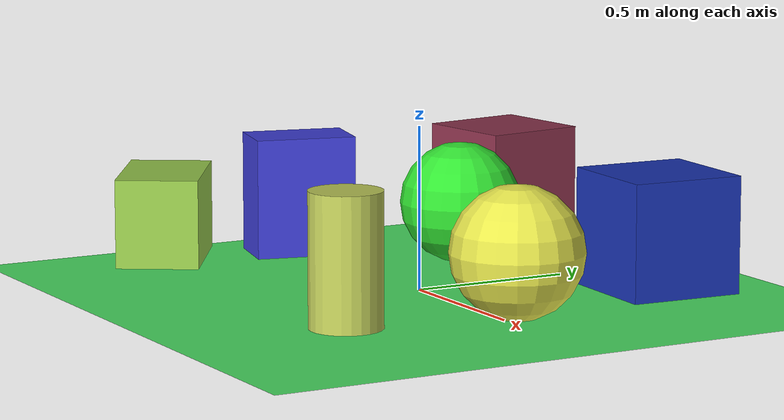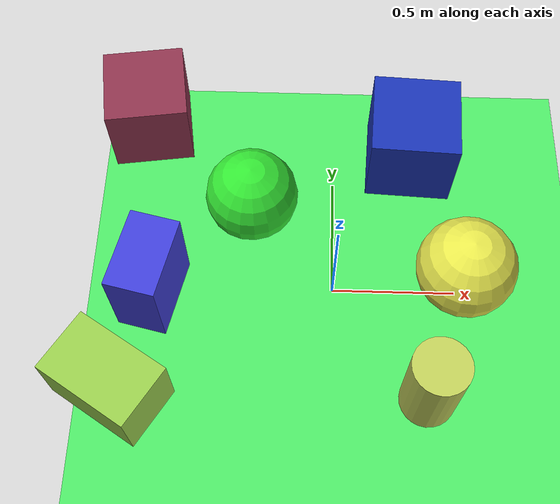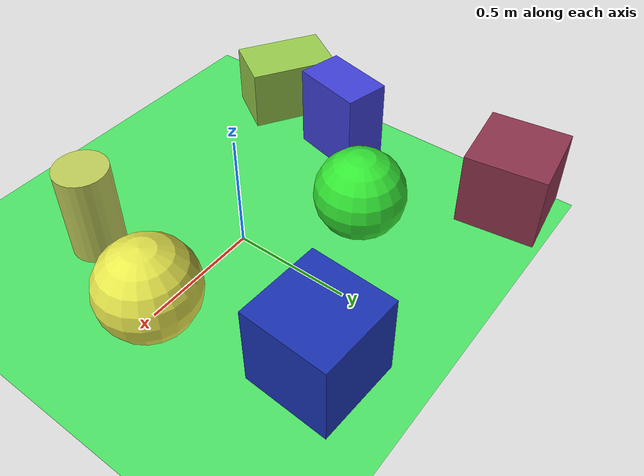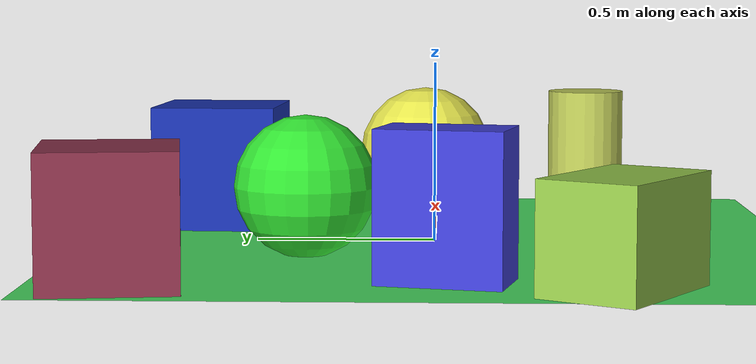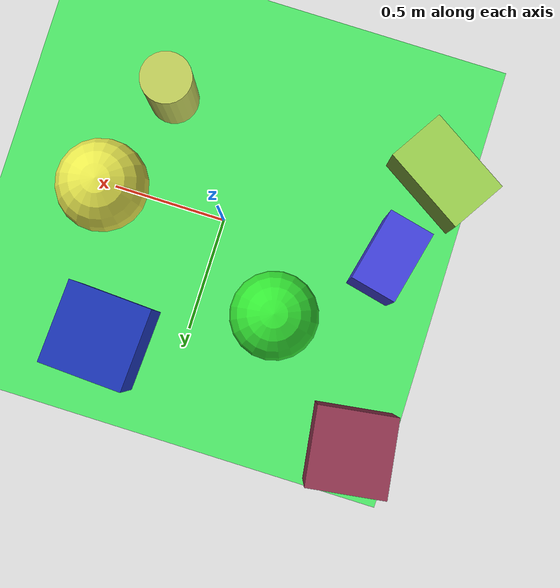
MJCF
<mujoco>
   <asset>
<texture type="skybox" builtin="gradient" rgb1="0.5 0.9 0.9" rgb2="0.2 0.6 0.7" width="500" height="500"/>
<texture name="flat_0" builtin="flat" rgb1="0.9 0.9 0.3" rgb2="0.9 0.9 0.3"  width="500" height="500"/>
<texture name="flat_1" builtin="flat" rgb1="0.1 0.2 0.7" rgb2="0.1 0.2 0.7"  width="500" height="500"/>
<texture name="checker_2" builtin="checker" rgb1="0.2 0.3 0.4" rgb2="0.9 0.1 0.2" width="500" height="500"/>
<texture name="flat_3" builtin="flat" rgb1="0.2 0.9 0.2" rgb2="0.2 0.9 0.2"  width="500" height="500"/>
<texture name="gradient_4" builtin="gradient" rgb1="0.2 0.4 1.0" rgb2="0.3 0.1 0.7" width="500" height="500"/>
<texture name="checker_5" builtin="checker" rgb1="0.6 0.9 0.6" rgb2="0.9 0.7 0.1" width="500" height="500"/>
<texture name="flat_6" builtin="flat" rgb1="0.6 0.8 0.3" rgb2="0.6 0.8 0.3"  width="500" height="500"/><material name="flat_0_mat" reflectance="0.5439989588560529" texture="flat_0" texuniform="true"/>
<material name="flat_1_mat" reflectance="0.010436593186622822" texture="flat_1" texuniform="true"/>
<material name="checker_2_mat" reflectance="0.7787277049185193" texrepeat="2 2" texture="checker_2" texuniform="false" />
<material name="flat_3_mat" reflectance="0.6897315008531918" texture="flat_3" texuniform="true"/>
<material name="gradient_4_mat" reflectance="0.20499300991371383" texture="gradient_4" texuniform="true"/>
<material name="checker_5_mat" reflectance="0.7540733615369428" texrepeat="10 10" texture="checker_5" texuniform="false" />
<material name="flat_6_mat" reflectance="0.05065825757088582" texture="flat_6" texuniform="true"/>
   </asset>

   <worldbody>
     <geom type="plane" size="1 1 0.1" rgba="0.3 0.9 0.4 1" />
<light pos="0.8088023004633378 -0.13687018928924055 2" dir="0 0 -1" cutoff="90" diffuse="1 1 1" specular="1 1 1"/>
<light pos="-0.8076243034309365 0.9943870890767577 2" dir="0 0 -1" cutoff="90" diffuse="1 1 1" specular="1 1 1"/>
<geom type="sphere" pos="0.52 0.03 0.2" size="0.2 0.2 0.2" material="flat_0_mat" euler="0 0 23" />
<geom type="box" pos="0.33 0.64 0.18" size="0.18 0.18 0.18" material="flat_1_mat" euler="0 0 87" />
<geom type="box" pos="-0.81 0.78 0.17" size="0.17 0.17 0.17" material="checker_2_mat" euler="0 0 8" />
<geom type="sphere" pos="-0.34 0.34 0.19" size="0.19 0.19 0.19" material="flat_3_mat" euler="0 0 24" />
<geom type="box" pos="-0.73 -0.03 0.19" size="0.16 0.1 0.19" material="gradient_4_mat" euler="0 0 77" />
<geom type="cylinder" pos="0.37 -0.45 0.2" size="0.11 0.2 0.2" material="checker_5_mat" euler="0 0 25" />
<geom type="box" pos="-0.85 -0.45 0.14" size="0.13 0.2 0.14" material="flat_6_mat" euler="0 0 58" /><camera euler="60 0 180" fovy="60" name="camera1" pos="-0.2 -1.5 1"></camera>   </worldbody>
   <visual>
      <headlight diffuse="0.7 0.7 0.7"/>
   </visual>
</mujoco>
